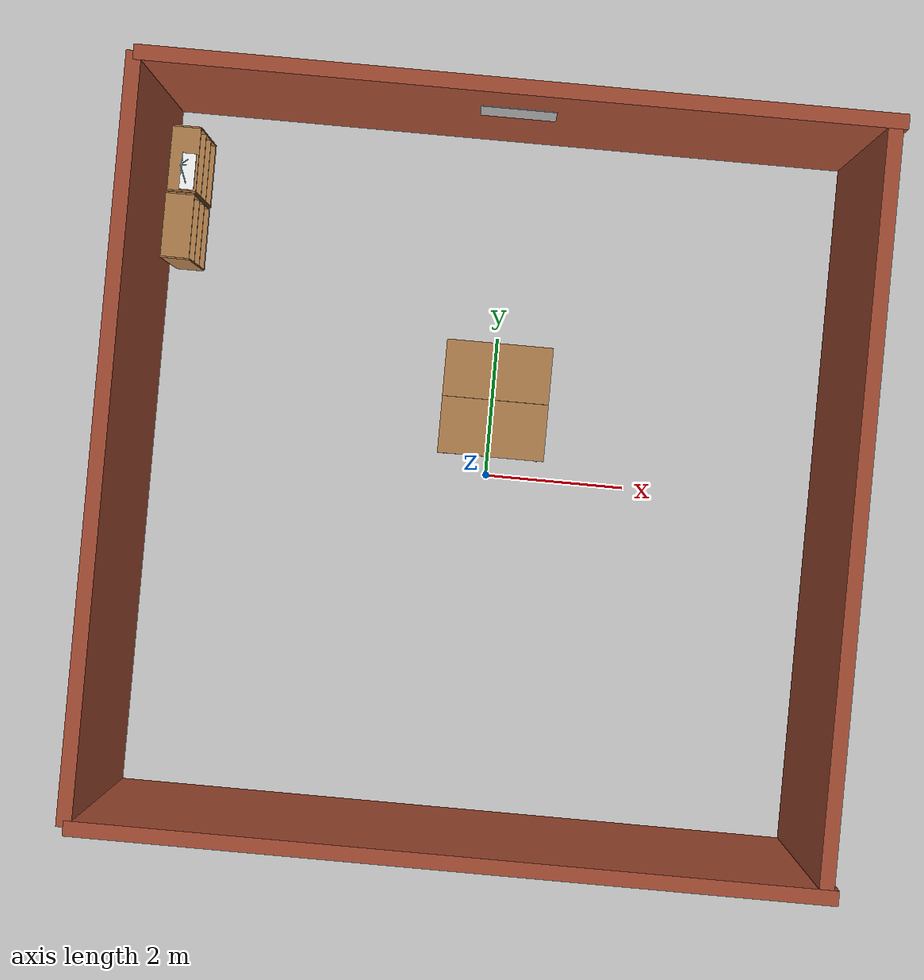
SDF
<sdf version="1.7">
 <world name="ufba_modificado">
  <light name="sun" type="directional">
   <pose>0 0 10 0 -0 0</pose>
   <diffuse>0.8 0.8 0.8 1</diffuse>
   <specular>0.2 0.2 0.2 1</specular>
   <attenuation>
    <range>1000</range>
    <constant>0.9</constant>
    <linear>0.01</linear>
    <quadratic>0.001</quadratic>
   </attenuation>
   <direction>-0.5 0.1 -0.9</direction>
   <spot><inner_angle>0</inner_angle><outer_angle>0</outer_angle><falloff>0</falloff></spot>
  </light>
  <physics type="ode">
   <max_step_size>0.002</max_step_size>
   <real_time_factor>1</real_time_factor>
   <real_time_update_rate>500</real_time_update_rate>
  </physics>
  <scene><ambient>0.4 0.4 0.4 1</ambient><background>0.7 0.7 0.7 1</background><shadows>1</shadows></scene>
  <model name="ground_plane">
   <static>1</static>
   <link name="link">
    <collision name="collision">
     <geometry><plane><normal>0 0 1</normal><size>100 100</size></plane></geometry>
     <surface>
      <contact><collide_bitmask>65535</collide_bitmask></contact>
      <friction><ode><mu>100</mu><mu2>50</mu2></ode></friction>
     </surface>
    </collision>
    <visual name="visual">
     <cast_shadows>0</cast_shadows>
     <geometry><plane><normal>0 0 1</normal><size>100 100</size></plane></geometry>
     <material>
      <script><uri>file://media/materials/scripts/gazebo.material</uri><name>Gazebo/Grey</name></script>
     </material>
    </visual>
   </link>
  </model>
  <model name="parede_norte">
   <static>1</static>
   <pose>0 5 1.4 0 -0 0</pose>
   <link name="link">
    <collision name="collision"><geometry><box><size>10 0.2 2.8</size></box></geometry></collision>
    <visual name="visual">
     <geometry><box><size>10 0.2 2.8</size></box></geometry>
     <material>
      <script><uri>file://media/materials/scripts/gazebo.material</uri><name>Gazebo/Bricks</name></script>
     </material>
    </visual>
   </link>
  </model>
  <model name="parede_sul">
   <static>1</static>
   <pose>0 -5 1.4 0 -0 0</pose>
   <link name="link">
    <collision name="collision"><geometry><box><size>10 0.2 2.8</size></box></geometry></collision>
    <visual name="visual">
     <geometry><box><size>10 0.2 2.8</size></box></geometry>
     <material>
      <script><uri>file://media/materials/scripts/gazebo.material</uri><name>Gazebo/Bricks</name></script>
     </material>
    </visual>
   </link>
  </model>
  <model name="parede_leste">
   <static>1</static>
   <pose>4.83525 0.034454 1.4 0 -0 1.5707</pose>
   <link name="link">
    <collision name="collision"><geometry><box><size>10 0.2 2.8</size></box></geometry></collision>
    <visual name="visual">
     <geometry><box><size>10 0.2 2.8</size></box></geometry>
     <material>
      <script><uri>file://media/materials/scripts/gazebo.material</uri><name>Gazebo/Bricks</name></script>
     </material>
    </visual>
   </link>
  </model>
  <model name="parede_oeste">
   <static>1</static>
   <pose>-4.99255 0.015266 1.4 0 -0 1.5707</pose>
   <link name="link">
    <collision name="collision"><geometry><box><size>10 0.2 2.8</size></box></geometry></collision>
    <visual name="visual">
     <geometry><box><size>10 0.2 2.8</size></box></geometry>
     <material>
      <script><uri>file://media/materials/scripts/gazebo.material</uri><name>Gazebo/Bricks</name></script>
     </material>
    </visual>
   </link>
  </model>
  <model name="prateleira_1">
   <static>1</static>
   <link name="link">
    <inertial><mass>1</mass></inertial>
    <collision name="back">
     <pose>0 0.005 0.6 0 -0 0</pose>
     <geometry><box><size>0.9 0.01 1.2</size></box></geometry>
    </collision>
    <visual name="visual1">
     <pose>0 0.005 0.6 0 -0 0</pose>
     <geometry><box><size>0.9 0.01 1.2</size></box></geometry>
     <material>
      <script><uri>file://media/materials/scripts/gazebo.material</uri><name>Gazebo/Wood</name></script>
     </material>
    </visual>
    <collision name="left_side">
     <pose>0.45 -0.195 0.6 0 -0 0</pose>
     <geometry><box><size>0.02 0.4 1.2</size></box></geometry>
    </collision>
    <visual name="visual2">
     <pose>0.45 -0.195 0.6 0 -0 0</pose>
     <geometry><box><size>0.02 0.4 1.2</size></box></geometry>
     <material>
      <script><uri>file://media/materials/scripts/gazebo.material</uri><name>Gazebo/Wood</name></script>
     </material>
    </visual>
    <collision name="right_side">
     <pose>-0.45 -0.195 0.6 0 -0 0</pose>
     <geometry><box><size>0.02 0.4 1.2</size></box></geometry>
    </collision>
    <visual name="visual3">
     <pose>-0.45 -0.195 0.6 0 -0 0</pose>
     <geometry><box><size>0.02 0.4 1.2</size></box></geometry>
     <material>
      <script><uri>file://media/materials/scripts/gazebo.material</uri><name>Gazebo/Wood</name></script>
     </material>
    </visual>
    <collision name="bottom">
     <pose>0 -0.195 0.03 0 -0 0</pose>
     <geometry><box><size>0.88 0.4 0.06</size></box></geometry>
    </collision>
    <visual name="visual4">
     <pose>0 -0.195 0.03 0 -0 0</pose>
     <geometry><box><size>0.88 0.4 0.06</size></box></geometry>
     <material>
      <script><uri>file://media/materials/scripts/gazebo.material</uri><name>Gazebo/Wood</name></script>
     </material>
    </visual>
    <collision name="top">
     <pose>0 -0.195 1.19 0 -0 0</pose>
     <geometry><box><size>0.88 0.4 0.02</size></box></geometry>
    </collision>
    <visual name="visual5">
     <pose>0 -0.195 1.19 0 -0 0</pose>
     <geometry><box><size>0.88 0.4 0.02</size></box></geometry>
     <material>
      <script><uri>file://media/materials/scripts/gazebo.material</uri><name>Gazebo/Wood</name></script>
     </material>
    </visual>
    <collision name="low_shelf">
     <pose>0 -0.195 0.43 0 -0 0</pose>
     <geometry><box><size>0.88 0.4 0.02</size></box></geometry>
    </collision>
    <visual name="visual6">
     <pose>0 -0.195 0.43 0 -0 0</pose>
     <geometry><box><size>0.88 0.4 0.02</size></box></geometry>
     <material>
      <script><uri>file://media/materials/scripts/gazebo.material</uri><name>Gazebo/Wood</name></script>
     </material>
    </visual>
    <collision name="high_shelf">
     <pose>0 -0.195 0.8 0 -0 0</pose>
     <geometry><box><size>0.88 0.4 0.02</size></box></geometry>
    </collision>
    <visual name="visual7">
     <pose>0 -0.195 0.8 0 -0 0</pose>
     <geometry><box><size>0.88 0.4 0.02</size></box></geometry>
     <material>
      <script><uri>file://media/materials/scripts/gazebo.material</uri><name>Gazebo/Wood</name></script>
     </material>
    </visual>
   </link>
   <pose>-4.77065 3.0608 0 0 -0 1.5707</pose>
  </model>
  <model name="mesa_escritorio">
   <static>1</static>
   <link name="link">
    <collision name="surface">
     <pose>0 0 1 0 -0 0</pose>
     <geometry><box><size>1.5 0.8 0.03</size></box></geometry>
     <surface><friction><ode><mu>0.6</mu><mu2>0.6</mu2></ode></friction></surface>
    </collision>
    <visual name="visual1">
     <pose>0 0 1 0 -0 0</pose>
     <geometry><box><size>1.5 0.8 0.03</size></box></geometry>
     <material>
      <script><uri>file://media/materials/scripts/gazebo.material</uri><name>Gazebo/Wood</name></script>
     </material>
    </visual>
    <collision name="front_left_leg">
     <pose>0.68 0.38 0.5 0 -0 0</pose>
     <geometry><cylinder><radius>0.02</radius><length>1</length></cylinder></geometry>
    </collision>
    <visual name="front_left_leg">
     <pose>0.68 0.38 0.5 0 -0 0</pose>
     <geometry><cylinder><radius>0.02</radius><length>1</length></cylinder></geometry>
     <material>
      <script><uri>file://media/materials/scripts/gazebo.material</uri><name>Gazebo/Grey</name></script>
     </material>
    </visual>
    <collision name="front_right_leg">
     <pose>0.68 -0.38 0.5 0 -0 0</pose>
     <geometry><cylinder><radius>0.02</radius><length>1</length></cylinder></geometry>
    </collision>
    <visual name="front_right_leg">
     <pose>0.68 -0.38 0.5 0 -0 0</pose>
     <geometry><cylinder><radius>0.02</radius><length>1</length></cylinder></geometry>
     <material>
      <script><uri>file://media/materials/scripts/gazebo.material</uri><name>Gazebo/Grey</name></script>
     </material>
    </visual>
    <collision name="back_right_leg">
     <pose>-0.68 -0.38 0.5 0 -0 0</pose>
     <geometry><cylinder><radius>0.02</radius><length>1</length></cylinder></geometry>
    </collision>
    <visual name="back_right_leg">
     <pose>-0.68 -0.38 0.5 0 -0 0</pose>
     <geometry><cylinder><radius>0.02</radius><length>1</length></cylinder></geometry>
     <material>
      <script><uri>file://media/materials/scripts/gazebo.material</uri><name>Gazebo/Grey</name></script>
     </material>
    </visual>
    <collision name="back_left_leg">
     <pose>-0.68 0.38 0.5 0 -0 0</pose>
     <geometry><cylinder><radius>0.02</radius><length>1</length></cylinder></geometry>
    </collision>
    <visual name="back_left_leg">
     <pose>-0.68 0.38 0.5 0 -0 0</pose>
     <geometry><cylinder><radius>0.02</radius><length>1</length></cylinder></geometry>
     <material>
      <script><uri>file://media/materials/scripts/gazebo.material</uri><name>Gazebo/Grey</name></script>
     </material>
    </visual>
   </link>
   <pose>0.037722 1.46162 -0.11833 0 -0 0</pose>
  </model>
  <model name="placa_ufba_na_parede">
   <static>1</static>
   <pose>0 4.89 1.8 0 -0 0</pose>
   <link name="link">
    <visual name="visual">
     <geometry><box><size>1.024 0.01 0.512</size></box></geometry>
     <material>
      <script><uri>file://materials/scripts/ufba_logo.material</uri><name>Ufba/Logo</name></script>
     </material>
    </visual>
   </link>
  </model>
  <gravity>0 0 -9.8</gravity>
  <magnetic_field>6e-06 2.3e-05 -4.2e-05</magnetic_field>
  <atmosphere type="adiabatic"/>
  <spherical_coordinates>
   <surface_model>EARTH_WGS84</surface_model>
   <latitude_deg>0</latitude_deg>
   <longitude_deg>0</longitude_deg>
   <elevation>0</elevation>
   <heading_deg>0</heading_deg>
  </spherical_coordinates>
  <model name="prateleira_1_clone">
   <static>1</static>
   <link name="link">
    <inertial><mass>1</mass></inertial>
    <collision name="back">
     <pose>0 0.005 0.6 0 -0 0</pose>
     <geometry><box><size>0.9 0.01 1.2</size></box></geometry>
    </collision>
    <visual name="visual1">
     <pose>0 0.005 0.6 0 -0 0</pose>
     <geometry><box><size>0.9 0.01 1.2</size></box></geometry>
     <material>
      <script><uri>file://media/materials/scripts/gazebo.material</uri><name>Gazebo/Wood</name></script>
     </material>
    </visual>
    <collision name="left_side">
     <pose>0.45 -0.195 0.6 0 -0 0</pose>
     <geometry><box><size>0.02 0.4 1.2</size></box></geometry>
    </collision>
    <visual name="visual2">
     <pose>0.45 -0.195 0.6 0 -0 0</pose>
     <geometry><box><size>0.02 0.4 1.2</size></box></geometry>
     <material>
      <script><uri>file://media/materials/scripts/gazebo.material</uri><name>Gazebo/Wood</name></script>
     </material>
    </visual>
    <collision name="right_side">
     <pose>-0.45 -0.195 0.6 0 -0 0</pose>
     <geometry><box><size>0.02 0.4 1.2</size></box></geometry>
    </collision>
    <visual name="visual3">
     <pose>-0.45 -0.195 0.6 0 -0 0</pose>
     <geometry><box><size>0.02 0.4 1.2</size></box></geometry>
     <material>
      <script><uri>file://media/materials/scripts/gazebo.material</uri><name>Gazebo/Wood</name></script>
     </material>
    </visual>
    <collision name="bottom">
     <pose>0 -0.195 0.03 0 -0 0</pose>
     <geometry><box><size>0.88 0.4 0.06</size></box></geometry>
    </collision>
    <visual name="visual4">
     <pose>0 -0.195 0.03 0 -0 0</pose>
     <geometry><box><size>0.88 0.4 0.06</size></box></geometry>
     <material>
      <script><uri>file://media/materials/scripts/gazebo.material</uri><name>Gazebo/Wood</name></script>
     </material>
    </visual>
    <collision name="top">
     <pose>0 -0.195 1.19 0 -0 0</pose>
     <geometry><box><size>0.88 0.4 0.02</size></box></geometry>
    </collision>
    <visual name="visual5">
     <pose>0 -0.195 1.19 0 -0 0</pose>
     <geometry><box><size>0.88 0.4 0.02</size></box></geometry>
     <material>
      <script><uri>file://media/materials/scripts/gazebo.material</uri><name>Gazebo/Wood</name></script>
     </material>
    </visual>
    <collision name="low_shelf">
     <pose>0 -0.195 0.43 0 -0 0</pose>
     <geometry><box><size>0.88 0.4 0.02</size></box></geometry>
    </collision>
    <visual name="visual6">
     <pose>0 -0.195 0.43 0 -0 0</pose>
     <geometry><box><size>0.88 0.4 0.02</size></box></geometry>
     <material>
      <script><uri>file://media/materials/scripts/gazebo.material</uri><name>Gazebo/Wood</name></script>
     </material>
    </visual>
    <collision name="high_shelf">
     <pose>0 -0.195 0.8 0 -0 0</pose>
     <geometry><box><size>0.88 0.4 0.02</size></box></geometry>
    </collision>
    <visual name="visual7">
     <pose>0 -0.195 0.8 0 -0 0</pose>
     <geometry><box><size>0.88 0.4 0.02</size></box></geometry>
     <material>
      <script><uri>file://media/materials/scripts/gazebo.material</uri><name>Gazebo/Wood</name></script>
     </material>
    </visual>
   </link>
   <pose>-4.76009 3.98886 0 0 -0 1.5707</pose>
  </model>
  <model name="pendulum">
   <link name="base">
    <inertial>
     <inertia><ixx>1</ixx><ixy>0</ixy><ixz>0</ixz><iyy>1</iyy><iyz>0</iyz><izz>1</izz></inertia>
     <mass>1</mass>
    </inertial>
    <visual name="vis_plate_on_ground">
     <pose>-0 0.001 0.0005 0 -0 0</pose>
     <geometry><box><size>0.2 0.5 0.015</size></box></geometry>
     <material>
      <ambient>1 1 1 1</ambient>
      <diffuse>1 1 1 1</diffuse>
      <specular>1 1 1 1</specular>
      <pbr>
       <metal>
        <albedo_map>materials/Wood/Wood_COLOR.jpg</albedo_map>
        <normal_map>materials/Wood/Wood_NORM.jpg</normal_map>
        <roughness_map>materials/Wood/Wood_ROUGH.jpg</roughness_map>
       </metal>
      </pbr>
     </material>
    </visual>
    <visual name="vis_pole">
     <pose>-0.01375 0.0819 0.225 0.349 -0 0</pose>
     <geometry><cylinder><length>0.4788</length><radius>0.007</radius></cylinder></geometry>
     <material>
      <ambient>0.66 1 1 1</ambient>
      <diffuse>0.66 1 1 1</diffuse>
      <specular>0.66 1 1 1</specular>
      <pbr><metal><metalness>0.9</metalness></metal></pbr>
     </material>
    </visual>
    <visual name="vis_pole2">
     <pose>-0.01375 -0.0819 0.225 -0.349 0 0</pose>
     <geometry><cylinder><length>0.4788</length><radius>0.007</radius></cylinder></geometry>
     <material>
      <ambient>0.66 1 1 1</ambient>
      <diffuse>0.66 1 1 1</diffuse>
      <specular>0.66 1 1 1</specular>
      <pbr><metal><metalness>0.9</metalness></metal></pbr>
     </material>
    </visual>
    <collision name="col_plate_on_ground">
     <pose>-0 0.001 0.0005 0 -0 0</pose>
     <geometry><box><size>0.2 0.5 0.015</size></box></geometry>
     <density>2710.0</density>
    </collision>
    <collision name="col_pole">
     <pose>-0.01375 0.0819 0.225 0.349 -0 0</pose>
     <geometry><cylinder><length>0.4788</length><radius>0.007</radius></cylinder></geometry>
     <density>2710</density>
    </collision>
    <collision name="col_pole2">
     <pose>-0.01375 -0.0819 0.225 -0.349 0 0</pose>
     <geometry><cylinder><length>0.4788</length><radius>0.007</radius></cylinder></geometry>
     <density>2710</density>
    </collision>
   </link>
   <link name="upper_link">
    <pose>0 0.017 0.355 0.2 -0 0</pose>
    <inertial>
     <inertia><ixx>1</ixx><ixy>0</ixy><ixz>0</ixz><iyy>1</iyy><iyz>0</iyz><izz>1</izz></inertia>
     <mass>1</mass>
    </inertial>
    <visual name="vis_upper_joint">
     <pose>-0.0025 0 0.0875 3.14159 1.57079 3.14159</pose>
     <geometry><cylinder><radius>0.005</radius><length>0.015</length></cylinder></geometry>
     <material>
      <ambient>0.66 1 1 1</ambient>
      <diffuse>0.66 1 1 1</diffuse>
      <specular>0.66 1 1 1</specular>
      <pbr><metal><metalness>0.9</metalness></metal></pbr>
     </material>
    </visual>
    <visual name="vis_bob2">
     <pose>0.01 0 0.2 3.14159 1.57079 3.14159</pose>
     <geometry><cylinder><radius>0.005</radius><length>0.02</length></cylinder></geometry>
     <material>
      <ambient>0.66 1 1 1</ambient>
      <diffuse>0.66 1 1 1</diffuse>
      <specular>0.66 1 1 1</specular>
      <pbr><metal><metalness>0.9</metalness></metal></pbr>
     </material>
    </visual>
    <visual name="vis_cylinder">
     <pose>0.01 0 0 0 -0 0</pose>
     <geometry><cylinder><radius>0.005</radius><length>0.395</length></cylinder></geometry>
     <material>
      <ambient>0.66 1 1 1</ambient>
      <diffuse>0.66 1 1 1</diffuse>
      <specular>0.66 1 1 1</specular>
      <pbr><metal><metalness>0.9</metalness></metal></pbr>
     </material>
    </visual>
    <collision name="col_upper_joint">
     <pose>-0.0025 0 0.0875 3.14159 1.57079 3.14159</pose>
     <geometry><cylinder><radius>0.01</radius><length>0.015</length></cylinder></geometry>
     <density>2710</density>
    </collision>
    <collision name="col_bob2">
     <pose>0.01 0 0.207 3.14159 1.57079 3.14159</pose>
     <geometry><cylinder><radius>0.01</radius><length>0.02</length></cylinder></geometry>
     <density>2710</density>
    </collision>
    <collision name="col_cylinder">
     <pose>0.01 0 0 0 -0 0</pose>
     <geometry><cylinder><radius>0.005</radius><length>0.395</length></cylinder></geometry>
     <density>2710</density>
    </collision>
   </link>
   <link name="lower_link">
    <pose>0.025 -0.02 0.55 -1.57 0 0</pose>
    <inertial>
     <inertia><ixx>1</ixx><ixy>0</ixy><ixz>0</ixz><iyy>1</iyy><iyz>0</iyz><izz>1</izz></inertia>
     <mass>1</mass>
    </inertial>
    <visual name="vis_cylinder">
     <pose>0 0 0.025 0 -0 0</pose>
     <geometry><cylinder><radius>0.005</radius><length>0.3</length></cylinder></geometry>
     <material>
      <ambient>0.66 1 1 1</ambient>
      <diffuse>0.66 1 1 1</diffuse>
      <specular>0.66 1 1 1</specular>
      <pbr><metal><metalness>0.9</metalness></metal></pbr>
     </material>
    </visual>
    <collision name="col_cylinder">
     <pose>0 0 0.025 0 -0 0</pose>
     <geometry><cylinder><radius>0.005</radius><length>0.3</length></cylinder></geometry>
     <density>2710</density>
    </collision>
   </link>
   <joint name="upper_joint" type="revolute">
    <pose>-0.0025 0 0.0875 0 -0 0</pose>
    <parent>base</parent>
    <child>upper_link</child>
    <axis>
     <xyz>1 0 0</xyz>
     <limit><lower>-1e+16</lower><upper>1e+16</upper></limit>
     <dynamics><spring_reference>0</spring_reference><spring_stiffness>0</spring_stiffness></dynamics>
    </axis>
   </joint>
   <joint name="lower_joint" type="revolute">
    <pose relative_to="upper_link">0.01 0 0.2 0 -0 0</pose>
    <parent>upper_link</parent>
    <child>lower_link</child>
    <axis>
     <xyz>1 0 0</xyz>
     <limit><lower>-1e+16</lower><upper>1e+16</upper></limit>
     <dynamics><spring_reference>0</spring_reference><spring_stiffness>0</spring_stiffness></dynamics>
    </axis>
   </joint>
   <pose>-4.49774 3.81612 1.207 2e-06 2e-06 -0.003241</pose>
  </model>
  <model name="mesa_escritorio_clone">
   <static>1</static>
   <link name="link">
    <collision name="surface">
     <pose>0 0 1 0 -0 0</pose>
     <geometry><box><size>1.5 0.8 0.03</size></box></geometry>
     <surface><friction><ode><mu>0.6</mu><mu2>0.6</mu2></ode></friction></surface>
    </collision>
    <visual name="visual1">
     <pose>0 0 1 0 -0 0</pose>
     <geometry><box><size>1.5 0.8 0.03</size></box></geometry>
     <material>
      <script><uri>file://media/materials/scripts/gazebo.material</uri><name>Gazebo/Wood</name></script>
     </material>
    </visual>
    <collision name="front_left_leg">
     <pose>0.68 0.38 0.5 0 -0 0</pose>
     <geometry><cylinder><radius>0.02</radius><length>1</length></cylinder></geometry>
    </collision>
    <visual name="front_left_leg">
     <pose>0.68 0.38 0.5 0 -0 0</pose>
     <geometry><cylinder><radius>0.02</radius><length>1</length></cylinder></geometry>
     <material>
      <script><uri>file://media/materials/scripts/gazebo.material</uri><name>Gazebo/Grey</name></script>
     </material>
    </visual>
    <collision name="front_right_leg">
     <pose>0.68 -0.38 0.5 0 -0 0</pose>
     <geometry><cylinder><radius>0.02</radius><length>1</length></cylinder></geometry>
    </collision>
    <visual name="front_right_leg">
     <pose>0.68 -0.38 0.5 0 -0 0</pose>
     <geometry><cylinder><radius>0.02</radius><length>1</length></cylinder></geometry>
     <material>
      <script><uri>file://media/materials/scripts/gazebo.material</uri><name>Gazebo/Grey</name></script>
     </material>
    </visual>
    <collision name="back_right_leg">
     <pose>-0.68 -0.38 0.5 0 -0 0</pose>
     <geometry><cylinder><radius>0.02</radius><length>1</length></cylinder></geometry>
    </collision>
    <visual name="back_right_leg">
     <pose>-0.68 -0.38 0.5 0 -0 0</pose>
     <geometry><cylinder><radius>0.02</radius><length>1</length></cylinder></geometry>
     <material>
      <script><uri>file://media/materials/scripts/gazebo.material</uri><name>Gazebo/Grey</name></script>
     </material>
    </visual>
    <collision name="back_left_leg">
     <pose>-0.68 0.38 0.5 0 -0 0</pose>
     <geometry><cylinder><radius>0.02</radius><length>1</length></cylinder></geometry>
    </collision>
    <visual name="back_left_leg">
     <pose>-0.68 0.38 0.5 0 -0 0</pose>
     <geometry><cylinder><radius>0.02</radius><length>1</length></cylinder></geometry>
     <material>
      <script><uri>file://media/materials/scripts/gazebo.material</uri><name>Gazebo/Grey</name></script>
     </material>
    </visual>
   </link>
   <pose>0.039294 0.660282 -0.118076 0 -0 0</pose>
  </model>
 </world>
</sdf>
